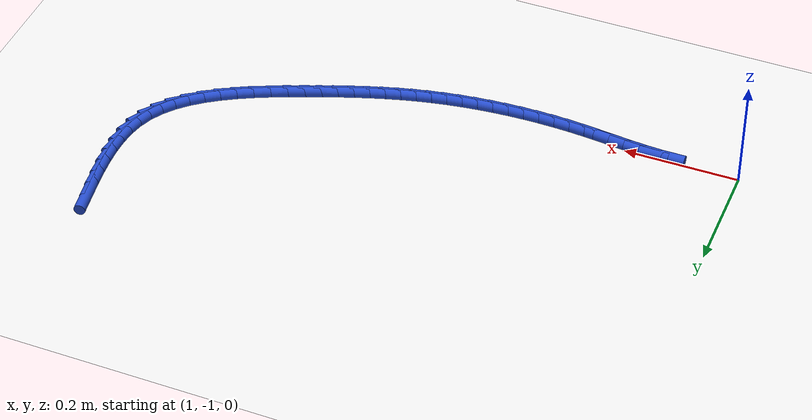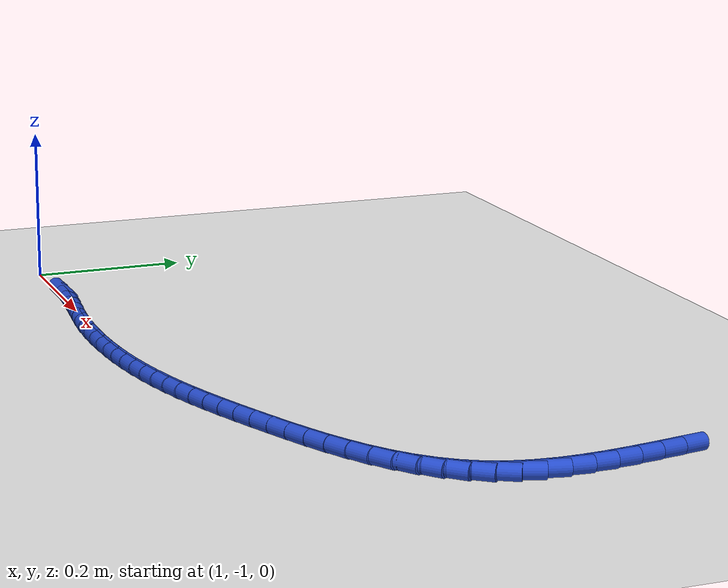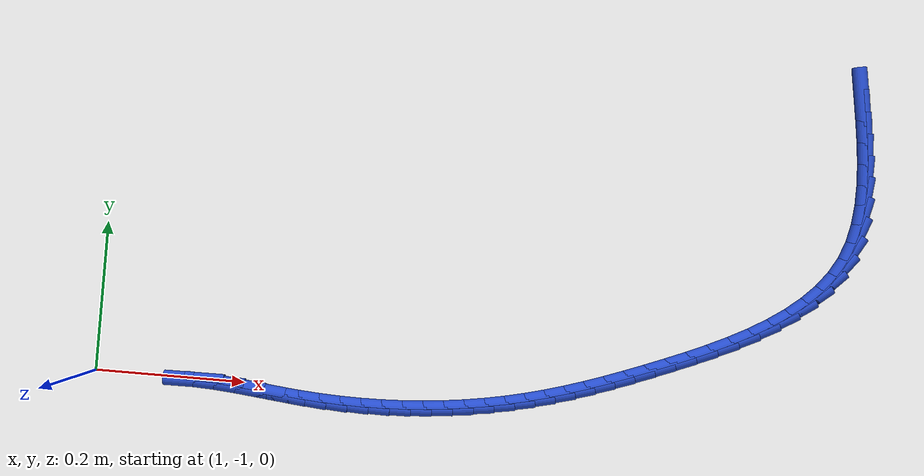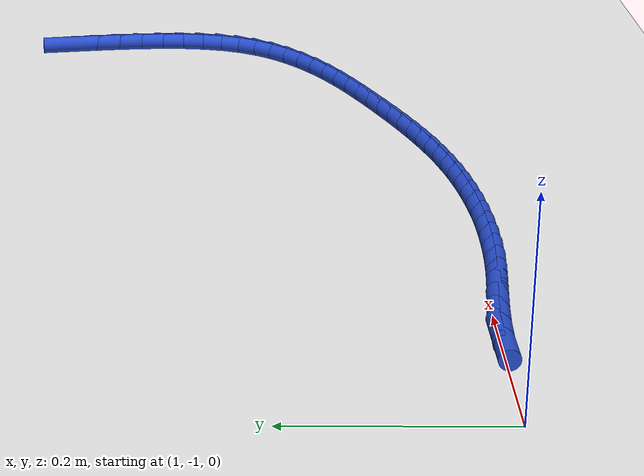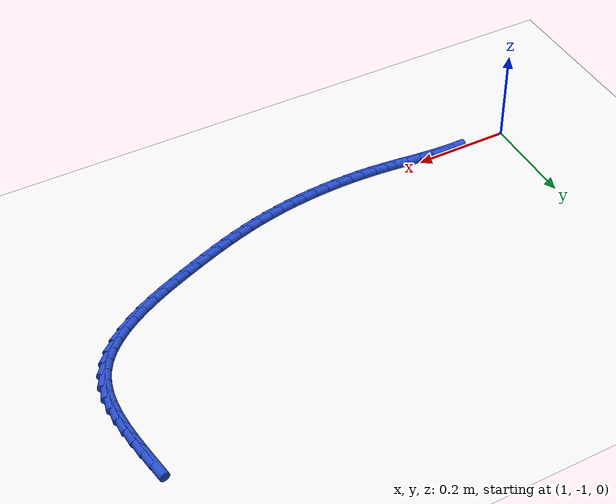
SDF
<sdf version="1.6">
 <world name="default">
  <model name="ground_plane">
   <static>1</static>
   <link name="link">
    <collision name="collision">
     <geometry><plane><normal>0 0 1</normal><size>100 100</size></plane></geometry>
     <surface><friction><ode><mu>100</mu><mu2>50</mu2></ode></friction></surface>
    </collision>
    <visual name="visual">
     <cast_shadows>0</cast_shadows>
     <geometry><plane><normal>0 0 1</normal><size>100 100</size></plane></geometry>
     <material>
      <script><uri>file://media/materials/scripts/gazebo.material</uri><name>Gazebo/WhiteGlow</name></script>
     </material>
    </visual>
   </link>
  </model>
  <model name="line">
   <link name="link_145">
    <pose>1.9896496665328733 -0.5517647025879118 0.01 0 1.57 -1.411015632222821</pose>
    <collision name="collision">
     <geometry><cylinder><radius>0.01</radius><length>0.08</length></cylinder></geometry>
    </collision>
    <visual name="visual">
     <material>
      <script><name>Gazebo/Blue</name><uri>file://media/materials/scripts/gazebo.material</uri></script>
     </material>
     <geometry><cylinder><radius>0.01</radius><length>0.08</length></cylinder></geometry>
    </visual>
   </link>
   <link name="link_146">
    <pose>1.9943967526311492 -0.5812214507234171 0.01 0 1.57 -1.430420233216988</pose>
    <collision name="collision">
     <geometry><cylinder><radius>0.01</radius><length>0.08</length></cylinder></geometry>
    </collision>
    <visual name="visual">
     <material>
      <script><name>Gazebo/Blue</name><uri>file://media/materials/scripts/gazebo.material</uri></script>
     </material>
     <geometry><cylinder><radius>0.01</radius><length>0.08</length></cylinder></geometry>
    </visual>
   </link>
   <link name="link_147">
    <pose>1.998550020247229 -0.6106135711276219 0.01 0 1.57 -1.4644988406172568</pose>
    <collision name="collision">
     <geometry><cylinder><radius>0.01</radius><length>0.08</length></cylinder></geometry>
    </collision>
    <visual name="visual">
     <material>
      <script><name>Gazebo/Blue</name><uri>file://media/materials/scripts/gazebo.material</uri></script>
     </material>
     <geometry><cylinder><radius>0.01</radius><length>0.08</length></cylinder></geometry>
    </visual>
   </link>
   <link name="link_148">
    <pose>2.0016522862671478 -0.6396883215402956 0.01 0 1.57 -1.5149309405763438</pose>
    <collision name="collision">
     <geometry><cylinder><radius>0.01</radius><length>0.08</length></cylinder></geometry>
    </collision>
    <visual name="visual">
     <material>
      <script><name>Gazebo/Blue</name><uri>file://media/materials/scripts/gazebo.material</uri></script>
     </material>
     <geometry><cylinder><radius>0.01</radius><length>0.08</length></cylinder></geometry>
    </visual>
   </link>
   <link name="link_149">
    <pose>2.0032463675769425 -0.6681929597012091 0.01 0 1.57 1.5573844651663353</pose>
    <collision name="collision">
     <geometry><cylinder><radius>0.01</radius><length>0.08</length></cylinder></geometry>
    </collision>
    <visual name="visual">
     <material>
      <script><name>Gazebo/Blue</name><uri>file://media/materials/scripts/gazebo.material</uri></script>
     </material>
     <geometry><cylinder><radius>0.01</radius><length>0.08</length></cylinder></geometry>
    </visual>
   </link>
   <link name="link_150">
    <pose>2.0028750810626486 -0.6958747433501317 0.01 0 1.57 1.4661726865041345</pose>
    <collision name="collision">
     <geometry><cylinder><radius>0.01</radius><length>0.08</length></cylinder></geometry>
    </collision>
    <visual name="visual">
     <material>
      <script><name>Gazebo/Blue</name><uri>file://media/materials/scripts/gazebo.material</uri></script>
     </material>
     <geometry><cylinder><radius>0.01</radius><length>0.08</length></cylinder></geometry>
    </visual>
   </link>
   <link name="link_151">
    <pose>2.0000812436103015 -0.7224809302268336 0.01 0 1.57 1.3500070049001773</pose>
    <collision name="collision">
     <geometry><cylinder><radius>0.01</radius><length>0.08</length></cylinder></geometry>
    </collision>
    <visual name="visual">
     <material>
      <script><name>Gazebo/Blue</name><uri>file://media/materials/scripts/gazebo.material</uri></script>
     </material>
     <geometry><cylinder><radius>0.01</radius><length>0.08</length></cylinder></geometry>
    </visual>
   </link>
   <link name="link_152">
    <pose>1.994407672105938 -0.7477587780710849 0.01 0 1.57 1.2074394473697871</pose>
    <collision name="collision">
     <geometry><cylinder><radius>0.01</radius><length>0.08</length></cylinder></geometry>
    </collision>
    <visual name="visual">
     <material>
      <script><name>Gazebo/Blue</name><uri>file://media/materials/scripts/gazebo.material</uri></script>
     </material>
     <geometry><cylinder><radius>0.01</radius><length>0.08</length></cylinder></geometry>
    </visual>
   </link>
   <link name="link_153">
    <pose>1.9853972053997706 -0.7714555540913642 0.01 0 1.57 1.048264683385929</pose>
    <collision name="collision">
     <geometry><cylinder><radius>0.01</radius><length>0.08</length></cylinder></geometry>
    </collision>
    <visual name="visual">
     <material>
      <script><name>Gazebo/Blue</name><uri>file://media/materials/scripts/gazebo.material</uri></script>
     </material>
     <geometry><cylinder><radius>0.01</radius><length>0.08</length></cylinder></geometry>
    </visual>
   </link>
   <link name="link_154">
    <pose>1.9727633322104856 -0.7933920922844176 0.01 0 1.57 0.903232165758513</pose>
    <collision name="collision">
     <geometry><cylinder><radius>0.01</radius><length>0.08</length></cylinder></geometry>
    </collision>
    <visual name="visual">
     <material>
      <script><name>Gazebo/Blue</name><uri>file://media/materials/scripts/gazebo.material</uri></script>
     </material>
     <geometry><cylinder><radius>0.01</radius><length>0.08</length></cylinder></geometry>
    </visual>
   </link>
   <link name="link_155">
    <pose>1.956801784302881 -0.8136402303616495 0.01 0 1.57 0.7804890622227453</pose>
    <collision name="collision">
     <geometry><cylinder><radius>0.01</radius><length>0.08</length></cylinder></geometry>
    </collision>
    <visual name="visual">
     <material>
      <script><name>Gazebo/Blue</name><uri>file://media/materials/scripts/gazebo.material</uri></script>
     </material>
     <geometry><cylinder><radius>0.01</radius><length>0.08</length></cylinder></geometry>
    </visual>
   </link>
   <link name="link_156">
    <pose>1.9379323624920426 -0.832325291933016 0.01 0 1.57 0.6793294802862614</pose>
    <collision name="collision">
     <geometry><cylinder><radius>0.01</radius><length>0.08</length></cylinder></geometry>
    </collision>
    <visual name="visual">
     <material>
      <script><name>Gazebo/Blue</name><uri>file://media/materials/scripts/gazebo.material</uri></script>
     </material>
     <geometry><cylinder><radius>0.01</radius><length>0.08</length></cylinder></geometry>
    </visual>
   </link>
   <link name="link_157">
    <pose>1.9165748675930565 -0.8495726006084734 0.01 0 1.57 0.5973330352153698</pose>
    <collision name="collision">
     <geometry><cylinder><radius>0.01</radius><length>0.08</length></cylinder></geometry>
    </collision>
    <visual name="visual">
     <material>
      <script><name>Gazebo/Blue</name><uri>file://media/materials/scripts/gazebo.material</uri></script>
     </material>
     <geometry><cylinder><radius>0.01</radius><length>0.08</length></cylinder></geometry>
    </visual>
   </link>
   <link name="link_158">
    <pose>1.8931491004210088 -0.8655074799979775 0.01 0 1.57 0.5316713723422039</pose>
    <collision name="collision">
     <geometry><cylinder><radius>0.01</radius><length>0.08</length></cylinder></geometry>
    </collision>
    <visual name="visual">
     <material>
      <script><name>Gazebo/Blue</name><uri>file://media/materials/scripts/gazebo.material</uri></script>
     </material>
     <geometry><cylinder><radius>0.01</radius><length>0.08</length></cylinder></geometry>
    </visual>
   </link>
   <link name="link_159">
    <pose>1.8680748617909846 -0.8802552537114849 0.01 0 1.57 0.47977299996767625</pose>
    <collision name="collision">
     <geometry><cylinder><radius>0.01</radius><length>0.08</length></cylinder></geometry>
    </collision>
    <visual name="visual">
     <material>
      <script><name>Gazebo/Blue</name><uri>file://media/materials/scripts/gazebo.material</uri></script>
     </material>
     <geometry><cylinder><radius>0.01</radius><length>0.08</length></cylinder></geometry>
    </visual>
   </link>
   <link name="link_160">
    <pose>1.8417719525180705 -0.893941245358951 0.01 0 1.57 0.43957225151008705</pose>
    <collision name="collision">
     <geometry><cylinder><radius>0.01</radius><length>0.08</length></cylinder></geometry>
    </collision>
    <visual name="visual">
     <material>
      <script><name>Gazebo/Blue</name><uri>file://media/materials/scripts/gazebo.material</uri></script>
     </material>
     <geometry><cylinder><radius>0.01</radius><length>0.08</length></cylinder></geometry>
    </visual>
   </link>
   <link name="link_161">
    <pose>1.814660173417352 -0.9066907785503323 0.01 0 1.57 0.409561683972751</pose>
    <collision name="collision">
     <geometry><cylinder><radius>0.01</radius><length>0.08</length></cylinder></geometry>
    </collision>
    <visual name="visual">
     <material>
      <script><name>Gazebo/Blue</name><uri>file://media/materials/scripts/gazebo.material</uri></script>
     </material>
     <geometry><cylinder><radius>0.01</radius><length>0.08</length></cylinder></geometry>
    </visual>
   </link>
   <link name="link_162">
    <pose>1.7871593253039146 -0.9186291768955844 0.01 0 1.57 0.38878054110385446</pose>
    <collision name="collision">
     <geometry><cylinder><radius>0.01</radius><length>0.08</length></cylinder></geometry>
    </collision>
    <visual name="visual">
     <material>
      <script><name>Gazebo/Blue</name><uri>file://media/materials/scripts/gazebo.material</uri></script>
     </material>
     <geometry><cylinder><radius>0.01</radius><length>0.08</length></cylinder></geometry>
    </visual>
   </link>
   <link name="link_163">
    <pose>1.7596892089928453 -0.9298817640046644 0.01 0 1.57 0.37613848021997437</pose>
    <collision name="collision">
     <geometry><cylinder><radius>0.01</radius><length>0.08</length></cylinder></geometry>
    </collision>
    <visual name="visual">
     <material>
      <script><name>Gazebo/Blue</name><uri>file://media/materials/scripts/gazebo.material</uri></script>
     </material>
     <geometry><cylinder><radius>0.01</radius><length>0.08</length></cylinder></geometry>
    </visual>
   </link>
   <link name="link_164">
    <pose>1.7326397196320045 -0.9405647446352438 0.01 0 1.57 0.3643885617726687</pose>
    <collision name="collision">
     <geometry><cylinder><radius>0.01</radius><length>0.08</length></cylinder></geometry>
    </collision>
    <visual name="visual">
     <material>
      <script><name>Gazebo/Blue</name><uri>file://media/materials/scripts/gazebo.material</uri></script>
     </material>
     <geometry><cylinder><radius>0.01</radius><length>0.08</length></cylinder></geometry>
    </visual>
   </link>
   <link name="link_165">
    <pose>1.7060780669490019 -0.9506959301314942 0.01 0 1.57 0.3490611121812332</pose>
    <collision name="collision">
     <geometry><cylinder><radius>0.01</radius><length>0.08</length></cylinder></geometry>
    </collision>
    <visual name="visual">
     <material>
      <script><name>Gazebo/Blue</name><uri>file://media/materials/scripts/gazebo.material</uri></script>
     </material>
     <geometry><cylinder><radius>0.01</radius><length>0.08</length></cylinder></geometry>
    </visual>
   </link>
   <link name="link_166">
    <pose>1.6798745499996874 -0.9602330897286675 0.01 0 1.57 0.33006792599767976</pose>
    <collision name="collision">
     <geometry><cylinder><radius>0.01</radius><length>0.08</length></cylinder></geometry>
    </collision>
    <visual name="visual">
     <material>
      <script><name>Gazebo/Blue</name><uri>file://media/materials/scripts/gazebo.material</uri></script>
     </material>
     <geometry><cylinder><radius>0.01</radius><length>0.08</length></cylinder></geometry>
    </visual>
   </link>
   <link name="link_167">
    <pose>1.6538966572374285 -0.9691331356515807 0.01 0 1.57 0.30748359429475985</pose>
    <collision name="collision">
     <geometry><cylinder><radius>0.01</radius><length>0.08</length></cylinder></geometry>
    </collision>
    <visual name="visual">
     <material>
      <script><name>Gazebo/Blue</name><uri>file://media/materials/scripts/gazebo.material</uri></script>
     </material>
     <geometry><cylinder><radius>0.01</radius><length>0.08</length></cylinder></geometry>
    </visual>
   </link>
   <link name="link_168">
    <pose>1.6280118771155925 -0.9773529801250513 0.01 0 1.57 0.28149379013489695</pose>
    <collision name="collision">
     <geometry><cylinder><radius>0.01</radius><length>0.08</length></cylinder></geometry>
    </collision>
    <visual name="visual">
     <material>
      <script><name>Gazebo/Blue</name><uri>file://media/materials/scripts/gazebo.material</uri></script>
     </material>
     <geometry><cylinder><radius>0.01</radius><length>0.08</length></cylinder></geometry>
    </visual>
   </link>
   <link name="link_169">
    <pose>1.6020876980875465 -0.9848495353738963 0.01 0 1.57 0.25239990975149396</pose>
    <collision name="collision">
     <geometry><cylinder><radius>0.01</radius><length>0.08</length></cylinder></geometry>
    </collision>
    <visual name="visual">
     <material>
      <script><name>Gazebo/Blue</name><uri>file://media/materials/scripts/gazebo.material</uri></script>
     </material>
     <geometry><cylinder><radius>0.01</radius><length>0.08</length></cylinder></geometry>
    </visual>
   </link>
   <link name="link_170">
    <pose>1.5759916086066577 -0.9915797136229335 0.01 0 1.57 0.22077823696861737</pose>
    <collision name="collision">
     <geometry><cylinder><radius>0.01</radius><length>0.08</length></cylinder></geometry>
    </collision>
    <visual name="visual">
     <material>
      <script><name>Gazebo/Blue</name><uri>file://media/materials/scripts/gazebo.material</uri></script>
     </material>
     <geometry><cylinder><radius>0.01</radius><length>0.08</length></cylinder></geometry>
    </visual>
   </link>
   <link name="link_171">
    <pose>1.5495999135393976 -0.9975029790232585 0.01 0 1.57 0.18878581285792986</pose>
    <collision name="collision">
     <geometry><cylinder><radius>0.01</radius><length>0.08</length></cylinder></geometry>
    </collision>
    <visual name="visual">
     <material>
      <script><name>Gazebo/Blue</name><uri>file://media/materials/scripts/gazebo.material</uri></script>
     </material>
     <geometry><cylinder><radius>0.01</radius><length>0.08</length></cylinder></geometry>
    </visual>
   </link>
   <link name="link_172">
    <pose>1.5228861469921495 -1.002606938900459 0.01 0 1.57 0.15755020416165555</pose>
    <collision name="collision">
     <geometry><cylinder><radius>0.01</radius><length>0.08</length></cylinder></geometry>
    </collision>
    <visual name="visual">
     <material>
      <script><name>Gazebo/Blue</name><uri>file://media/materials/scripts/gazebo.material</uri></script>
     </material>
     <geometry><cylinder><radius>0.01</radius><length>0.08</length></cylinder></geometry>
    </visual>
   </link>
   <link name="link_173">
    <pose>1.4958841603584025 -1.0068966595249582 0.01 0 1.57 0.12702294450212492</pose>
    <collision name="collision">
     <geometry><cylinder><radius>0.01</radius><length>0.08</length></cylinder></geometry>
    </collision>
    <visual name="visual">
     <material>
      <script><name>Gazebo/Blue</name><uri>file://media/materials/scripts/gazebo.material</uri></script>
     </material>
     <geometry><cylinder><radius>0.01</radius><length>0.08</length></cylinder></geometry>
    </visual>
   </link>
   <link name="link_174">
    <pose>1.4686287073358153 -1.0103774683407072 0.01 0 1.57 0.09713847248902466</pose>
    <collision name="collision">
     <geometry><cylinder><radius>0.01</radius><length>0.08</length></cylinder></geometry>
    </collision>
    <visual name="visual">
     <material>
      <script><name>Gazebo/Blue</name><uri>file://media/materials/scripts/gazebo.material</uri></script>
     </material>
     <geometry><cylinder><radius>0.01</radius><length>0.08</length></cylinder></geometry>
    </visual>
   </link>
   <link name="link_175">
    <pose>1.441154541622045 -1.0130546927916575 0.01 0 1.57 0.06783123973426365</pose>
    <collision name="collision">
     <geometry><cylinder><radius>0.01</radius><length>0.08</length></cylinder></geometry>
    </collision>
    <visual name="visual">
     <material>
      <script><name>Gazebo/Blue</name><uri>file://media/materials/scripts/gazebo.material</uri></script>
     </material>
     <geometry><cylinder><radius>0.01</radius><length>0.08</length></cylinder></geometry>
    </visual>
   </link>
   <link name="link_176">
    <pose>1.4134964169147506 -1.0149336603217598 0.01 0 1.57 0.039035979338024634</pose>
    <collision name="collision">
     <geometry><cylinder><radius>0.01</radius><length>0.08</length></cylinder></geometry>
    </collision>
    <visual name="visual">
     <material>
      <script><name>Gazebo/Blue</name><uri>file://media/materials/scripts/gazebo.material</uri></script>
     </material>
     <geometry><cylinder><radius>0.01</radius><length>0.08</length></cylinder></geometry>
    </visual>
   </link>
   <link name="link_177">
    <pose>1.3856890869115892 -1.016019698374966 0.01 0 1.57 0.010687880197184299</pose>
    <collision name="collision">
     <geometry><cylinder><radius>0.01</radius><length>0.08</length></cylinder></geometry>
    </collision>
    <visual name="visual">
     <material>
      <script><name>Gazebo/Blue</name><uri>file://media/materials/scripts/gazebo.material</uri></script>
     </material>
     <geometry><cylinder><radius>0.01</radius><length>0.08</length></cylinder></geometry>
    </visual>
   </link>
   <link name="link_178">
    <pose>1.357767305310219 -1.0163181343952268 0.01 0 1.57 -0.017277316539304022</pose>
    <collision name="collision">
     <geometry><cylinder><radius>0.01</radius><length>0.08</length></cylinder></geometry>
    </collision>
    <visual name="visual">
     <material>
      <script><name>Gazebo/Blue</name><uri>file://media/materials/scripts/gazebo.material</uri></script>
     </material>
     <geometry><cylinder><radius>0.01</radius><length>0.08</length></cylinder></geometry>
    </visual>
   </link>
   <link name="link_179">
    <pose>1.3297658258082985 -1.0158342958264936 0.01 0 1.57 -0.04492328439928285</pose>
    <collision name="collision">
     <geometry><cylinder><radius>0.01</radius><length>0.08</length></cylinder></geometry>
    </collision>
    <visual name="visual">
     <material>
      <script><name>Gazebo/Blue</name><uri>file://media/materials/scripts/gazebo.material</uri></script>
     </material>
     <geometry><cylinder><radius>0.01</radius><length>0.08</length></cylinder></geometry>
    </visual>
   </link>
   <link name="link_180">
    <pose>1.3017194021034852 -1.0145735101127178 0.01 0 1.57 -0.07231241525867647</pose>
    <collision name="collision">
     <geometry><cylinder><radius>0.01</radius><length>0.08</length></cylinder></geometry>
    </collision>
    <visual name="visual">
     <material>
      <script><name>Gazebo/Blue</name><uri>file://media/materials/scripts/gazebo.material</uri></script>
     </material>
     <geometry><cylinder><radius>0.01</radius><length>0.08</length></cylinder></geometry>
    </visual>
   </link>
   <link name="link_181">
    <pose>1.2736627878960094 -1.0125411248344458 0.01 0 1.57 -0.09642601670553831</pose>
    <collision name="collision">
     <geometry><cylinder><radius>0.01</radius><length>0.08</length></cylinder></geometry>
    </collision>
    <visual name="visual">
     <material>
      <script><name>Gazebo/Blue</name><uri>file://media/materials/scripts/gazebo.material</uri></script>
     </material>
     <geometry><cylinder><radius>0.01</radius><length>0.08</length></cylinder></geometry>
    </visual>
   </link>
   <link name="link_182">
    <pose>1.245630748025519 -1.0098296980816366 0.01 0 1.57 -0.10722503674348413</pose>
    <collision name="collision">
     <geometry><cylinder><radius>0.01</radius><length>0.08</length></cylinder></geometry>
    </collision>
    <visual name="visual">
     <material>
      <script><name>Gazebo/Blue</name><uri>file://media/materials/scripts/gazebo.material</uri></script>
     </material>
     <geometry><cylinder><radius>0.01</radius><length>0.08</length></cylinder></geometry>
    </visual>
   </link>
   <link name="link_183">
    <pose>1.217658083989253 -1.0068187802483417 0.01 0 1.57 -0.1026531970497717</pose>
    <collision name="collision">
     <geometry><cylinder><radius>0.01</radius><length>0.08</length></cylinder></geometry>
    </collision>
    <visual name="visual">
     <material>
      <script><name>Gazebo/Blue</name><uri>file://media/materials/scripts/gazebo.material</uri></script>
     </material>
     <geometry><cylinder><radius>0.01</radius><length>0.08</length></cylinder></geometry>
    </visual>
   </link>
   <link name="link_184">
    <pose>1.1897796048139746 -1.0039468703835988 0.01 0 1.57 -0.08249506815671052</pose>
    <collision name="collision">
     <geometry><cylinder><radius>0.01</radius><length>0.08</length></cylinder></geometry>
    </collision>
    <visual name="visual">
     <material>
      <script><name>Gazebo/Blue</name><uri>file://media/materials/scripts/gazebo.material</uri></script>
     </material>
     <geometry><cylinder><radius>0.01</radius><length>0.08</length></cylinder></geometry>
    </visual>
   </link>
   <link name="link_185">
    <pose>1.162030119526447 -1.0016524675364433 0.01 0 1.57 -0.046309631098671096</pose>
    <collision name="collision">
     <geometry><cylinder><radius>0.01</radius><length>0.08</length></cylinder></geometry>
    </collision>
    <visual name="visual">
     <material>
      <script><name>Gazebo/Blue</name><uri>file://media/materials/scripts/gazebo.material</uri></script>
     </material>
     <geometry><cylinder><radius>0.01</radius><length>0.08</length></cylinder></geometry>
    </visual>
   </link>
   <link name="link_186">
    <pose>1.1344444371534348 -1.0003740707559126 0.01 0 1.57 0.006430257237932636</pose>
    <collision name="collision">
     <geometry><cylinder><radius>0.01</radius><length>0.08</length></cylinder></geometry>
    </collision>
    <visual name="visual">
     <material>
      <script><name>Gazebo/Blue</name><uri>file://media/materials/scripts/gazebo.material</uri></script>
     </material>
     <geometry><cylinder><radius>0.01</radius><length>0.08</length></cylinder></geometry>
    </visual>
   </link>
  </model>
 </world>
</sdf>
